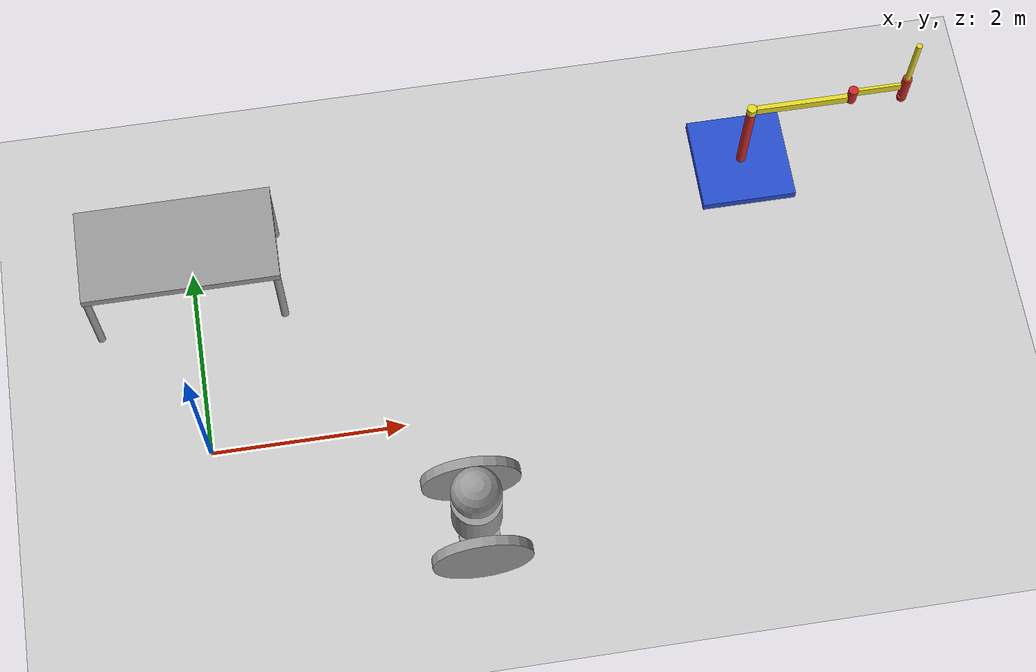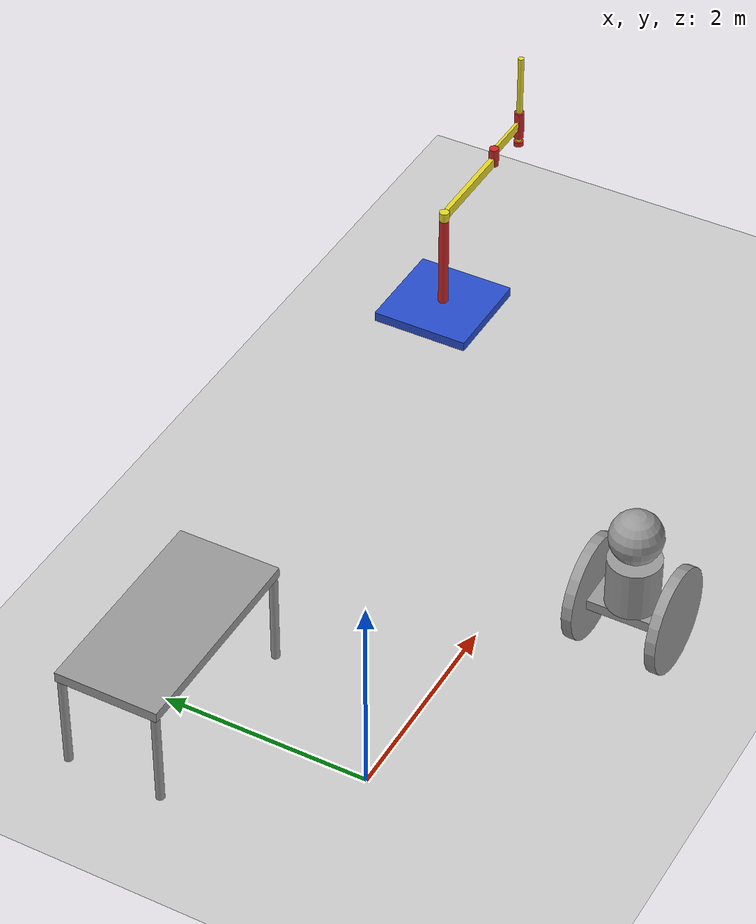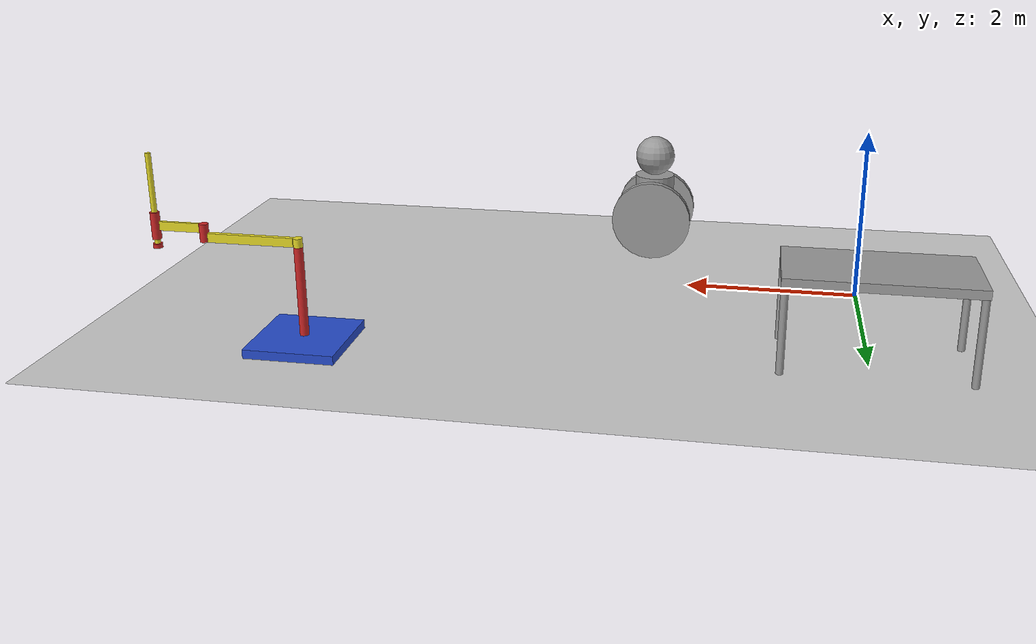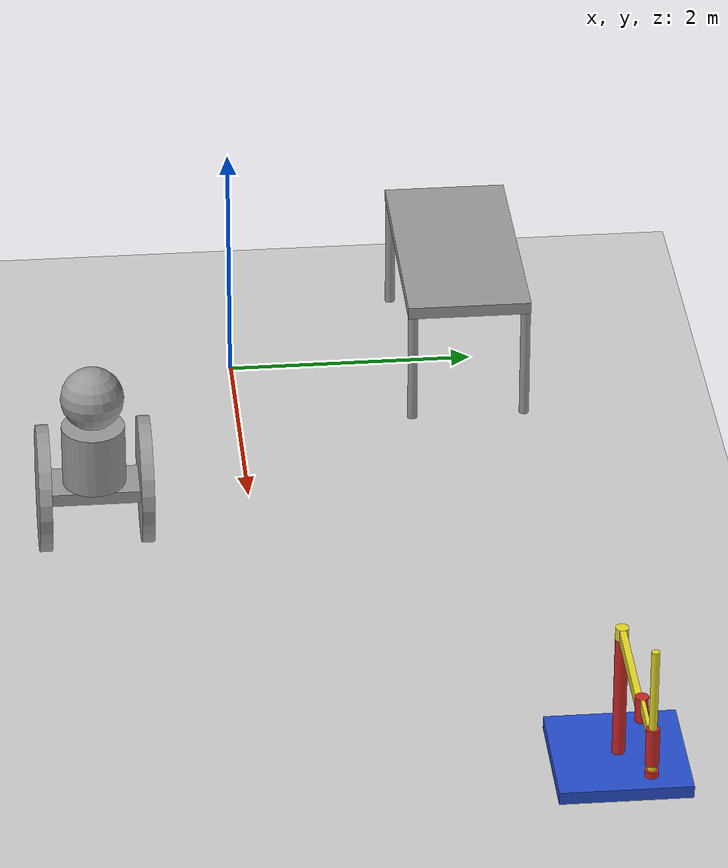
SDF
<sdf version="1.7">
 <world name="default">
  <model name="ground_plane">
   <static>1</static>
   <link name="link">
    <collision name="collision">
     <geometry><plane><normal>0 0 1</normal><size>100 100</size></plane></geometry>
     <surface>
      <contact><collide_bitmask>65535</collide_bitmask></contact>
      <friction><ode><mu>100</mu><mu2>50</mu2></ode></friction>
     </surface>
    </collision>
    <visual name="visual">
     <cast_shadows>0</cast_shadows>
     <geometry><plane><normal>0 0 1</normal><size>100 100</size></plane></geometry>
     <material>
      <script><uri>file://media/materials/scripts/gazebo.material</uri><name>Gazebo/Grey</name></script>
     </material>
    </visual>
   </link>
  </model>
  <model name="table">
   <link name="link_0">
    <inertial>
     <mass>1</mass>
     <inertia>
      <ixx>0.166667</ixx>
      <ixy>0</ixy>
      <ixz>0</ixz>
      <iyy>0.166667</iyy>
      <iyz>0</iyz>
      <izz>0.166667</izz>
     </inertia>
     <pose>0 0 1.5 0 -0 0</pose>
    </inertial>
    <pose>2e-06 0 0.4 0 -0 0</pose>
    <visual name="visual">
     <geometry><box><size>2 1 0.1</size></box></geometry>
     <material>
      <lighting>1</lighting>
      <script><uri>file://media/materials/scripts/gazebo.material</uri><name>Gazebo/Grey</name></script>
      <shader type="pixel"><normal_map>__default__</normal_map></shader>
      <ambient>0.3 0.3 0.3 1</ambient>
      <diffuse>0.7 0.7 0.7 1</diffuse>
      <specular>0.01 0.01 0.01 1</specular>
      <emissive>0 0 0 1</emissive>
     </material>
    </visual>
    <collision name="collision">
     <geometry><box><size>2 1 0.1</size></box></geometry>
     <surface>
      <friction>
       <ode><mu>1</mu><mu2>1</mu2><fdir1>0 0 0</fdir1><slip1>0</slip1><slip2>0</slip2></ode>
       <torsional>
        <coefficient>1</coefficient>
        <patch_radius>0</patch_radius>
        <surface_radius>0</surface_radius>
        <use_patch_radius>1</use_patch_radius>
        <ode><slip>0</slip></ode>
       </torsional>
      </friction>
      <bounce><restitution_coefficient>0</restitution_coefficient><threshold>1e+06</threshold></bounce>
      <contact>
       <collide_without_contact>0</collide_without_contact>
       <collide_without_contact_bitmask>1</collide_without_contact_bitmask>
       <collide_bitmask>1</collide_bitmask>
       <ode>
        <soft_cfm>0</soft_cfm>
        <soft_erp>0.2</soft_erp>
        <kp>1e+13</kp>
        <kd>1</kd>
        <max_vel>0.01</max_vel>
        <min_depth>0</min_depth>
       </ode>
       <bullet>
        <split_impulse>1</split_impulse>
        <split_impulse_penetration_threshold>-0.01</split_impulse_penetration_threshold>
        <soft_cfm>0</soft_cfm>
        <soft_erp>0.2</soft_erp>
        <kp>1e+13</kp>
        <kd>1</kd>
       </bullet>
      </contact>
     </surface>
    </collision>
   </link>
   <link name="link_1">
    <inertial>
     <mass>1</mass>
     <inertia><ixx>0.145833</ixx><ixy>0</ixy><ixz>0</ixz><iyy>0.145833</iyy><iyz>0</iyz><izz>0.125</izz></inertia>
    </inertial>
    <pose>-0.960002 -0.46 -0.1 0 -0 0</pose>
    <visual name="visual">
     <geometry><cylinder><radius>0.04</radius><length>1</length></cylinder></geometry>
     <material>
      <lighting>1</lighting>
      <script><uri>file://media/materials/scripts/gazebo.material</uri><name>Gazebo/Grey</name></script>
      <shader type="pixel"><normal_map>__default__</normal_map></shader>
      <ambient>0.3 0.3 0.3 1</ambient>
      <diffuse>0.7 0.7 0.7 1</diffuse>
      <specular>0.01 0.01 0.01 1</specular>
      <emissive>0 0 0 1</emissive>
     </material>
    </visual>
    <collision name="collision">
     <geometry><cylinder><radius>0.04</radius><length>1</length></cylinder></geometry>
     <surface>
      <friction>
       <ode><mu>1</mu><mu2>1</mu2><fdir1>0 0 0</fdir1><slip1>0</slip1><slip2>0</slip2></ode>
       <torsional>
        <coefficient>1</coefficient>
        <patch_radius>0</patch_radius>
        <surface_radius>0</surface_radius>
        <use_patch_radius>1</use_patch_radius>
        <ode><slip>0</slip></ode>
       </torsional>
      </friction>
      <bounce><restitution_coefficient>0</restitution_coefficient><threshold>1e+06</threshold></bounce>
      <contact>
       <collide_without_contact>0</collide_without_contact>
       <collide_without_contact_bitmask>1</collide_without_contact_bitmask>
       <collide_bitmask>1</collide_bitmask>
       <ode>
        <soft_cfm>0</soft_cfm>
        <soft_erp>0.2</soft_erp>
        <kp>1e+13</kp>
        <kd>1</kd>
        <max_vel>0.01</max_vel>
        <min_depth>0</min_depth>
       </ode>
       <bullet>
        <split_impulse>1</split_impulse>
        <split_impulse_penetration_threshold>-0.01</split_impulse_penetration_threshold>
        <soft_cfm>0</soft_cfm>
        <soft_erp>0.2</soft_erp>
        <kp>1e+13</kp>
        <kd>1</kd>
       </bullet>
      </contact>
     </surface>
    </collision>
   </link>
   <link name="link_1_clone">
    <inertial>
     <mass>1</mass>
     <inertia><ixx>0.145833</ixx><ixy>0</ixy><ixz>0</ixz><iyy>0.145833</iyy><iyz>0</iyz><izz>0.125</izz></inertia>
    </inertial>
    <pose>-0.960002 0.46 -0.1 0 -0 0</pose>
    <visual name="visual">
     <geometry><cylinder><radius>0.04</radius><length>1</length></cylinder></geometry>
     <material>
      <lighting>1</lighting>
      <script><uri>file://media/materials/scripts/gazebo.material</uri><name>Gazebo/Grey</name></script>
      <shader type="pixel"><normal_map>__default__</normal_map></shader>
      <ambient>0.3 0.3 0.3 1</ambient>
      <diffuse>0.7 0.7 0.7 1</diffuse>
      <specular>0.01 0.01 0.01 1</specular>
      <emissive>0 0 0 1</emissive>
     </material>
    </visual>
    <collision name="collision">
     <geometry><cylinder><radius>0.04</radius><length>1</length></cylinder></geometry>
     <surface>
      <friction>
       <ode><mu>1</mu><mu2>1</mu2><fdir1>0 0 0</fdir1><slip1>0</slip1><slip2>0</slip2></ode>
       <torsional>
        <coefficient>1</coefficient>
        <patch_radius>0</patch_radius>
        <surface_radius>0</surface_radius>
        <use_patch_radius>1</use_patch_radius>
        <ode><slip>0</slip></ode>
       </torsional>
      </friction>
      <bounce><restitution_coefficient>0</restitution_coefficient><threshold>1e+06</threshold></bounce>
      <contact>
       <collide_without_contact>0</collide_without_contact>
       <collide_without_contact_bitmask>1</collide_without_contact_bitmask>
       <collide_bitmask>1</collide_bitmask>
       <ode>
        <soft_cfm>0</soft_cfm>
        <soft_erp>0.2</soft_erp>
        <kp>1e+13</kp>
        <kd>1</kd>
        <max_vel>0.01</max_vel>
        <min_depth>0</min_depth>
       </ode>
       <bullet>
        <split_impulse>1</split_impulse>
        <split_impulse_penetration_threshold>-0.01</split_impulse_penetration_threshold>
        <soft_cfm>0</soft_cfm>
        <soft_erp>0.2</soft_erp>
        <kp>1e+13</kp>
        <kd>1</kd>
       </bullet>
      </contact>
     </surface>
    </collision>
   </link>
   <link name="link_1_clone_0">
    <inertial>
     <mass>1</mass>
     <inertia><ixx>0.145833</ixx><ixy>0</ixy><ixz>0</ixz><iyy>0.145833</iyy><iyz>0</iyz><izz>0.125</izz></inertia>
    </inertial>
    <pose>0.960002 -0.46 -0.1 0 -0 0</pose>
    <visual name="visual">
     <geometry><cylinder><radius>0.04</radius><length>1</length></cylinder></geometry>
     <material>
      <lighting>1</lighting>
      <script><uri>file://media/materials/scripts/gazebo.material</uri><name>Gazebo/Grey</name></script>
      <shader type="pixel"><normal_map>__default__</normal_map></shader>
      <ambient>0.3 0.3 0.3 1</ambient>
      <diffuse>0.7 0.7 0.7 1</diffuse>
      <specular>0.01 0.01 0.01 1</specular>
      <emissive>0 0 0 1</emissive>
     </material>
    </visual>
    <collision name="collision">
     <geometry><cylinder><radius>0.04</radius><length>1</length></cylinder></geometry>
     <surface>
      <friction>
       <ode><mu>1</mu><mu2>1</mu2><fdir1>0 0 0</fdir1><slip1>0</slip1><slip2>0</slip2></ode>
       <torsional>
        <coefficient>1</coefficient>
        <patch_radius>0</patch_radius>
        <surface_radius>0</surface_radius>
        <use_patch_radius>1</use_patch_radius>
        <ode><slip>0</slip></ode>
       </torsional>
      </friction>
      <bounce><restitution_coefficient>0</restitution_coefficient><threshold>1e+06</threshold></bounce>
      <contact>
       <collide_without_contact>0</collide_without_contact>
       <collide_without_contact_bitmask>1</collide_without_contact_bitmask>
       <collide_bitmask>1</collide_bitmask>
       <ode>
        <soft_cfm>0</soft_cfm>
        <soft_erp>0.2</soft_erp>
        <kp>1e+13</kp>
        <kd>1</kd>
        <max_vel>0.01</max_vel>
        <min_depth>0</min_depth>
       </ode>
       <bullet>
        <split_impulse>1</split_impulse>
        <split_impulse_penetration_threshold>-0.01</split_impulse_penetration_threshold>
        <soft_cfm>0</soft_cfm>
        <soft_erp>0.2</soft_erp>
        <kp>1e+13</kp>
        <kd>1</kd>
       </bullet>
      </contact>
     </surface>
    </collision>
   </link>
   <link name="link_1_clone_1">
    <inertial>
     <mass>1</mass>
     <inertia><ixx>0.145833</ixx><ixy>0</ixy><ixz>0</ixz><iyy>0.145833</iyy><iyz>0</iyz><izz>0.125</izz></inertia>
    </inertial>
    <pose>0.960002 0.46 -0.1 0 -0 0</pose>
    <visual name="visual">
     <geometry><cylinder><radius>0.04</radius><length>1</length></cylinder></geometry>
     <material>
      <lighting>1</lighting>
      <script><uri>file://media/materials/scripts/gazebo.material</uri><name>Gazebo/Grey</name></script>
      <shader type="pixel"><normal_map>__default__</normal_map></shader>
      <ambient>0.3 0.3 0.3 1</ambient>
      <diffuse>0.7 0.7 0.7 1</diffuse>
      <specular>0.01 0.01 0.01 1</specular>
      <emissive>0 0 0 1</emissive>
     </material>
    </visual>
    <collision name="collision">
     <geometry><cylinder><radius>0.04</radius><length>1</length></cylinder></geometry>
     <surface>
      <friction>
       <ode><mu>1</mu><mu2>1</mu2><fdir1>0 0 0</fdir1><slip1>0</slip1><slip2>0</slip2></ode>
       <torsional>
        <coefficient>1</coefficient>
        <patch_radius>0</patch_radius>
        <surface_radius>0</surface_radius>
        <use_patch_radius>1</use_patch_radius>
        <ode><slip>0</slip></ode>
       </torsional>
      </friction>
      <bounce><restitution_coefficient>0</restitution_coefficient><threshold>1e+06</threshold></bounce>
      <contact>
       <collide_without_contact>0</collide_without_contact>
       <collide_without_contact_bitmask>1</collide_without_contact_bitmask>
       <collide_bitmask>1</collide_bitmask>
       <ode>
        <soft_cfm>0</soft_cfm>
        <soft_erp>0.2</soft_erp>
        <kp>1e+13</kp>
        <kd>1</kd>
        <max_vel>0.01</max_vel>
        <min_depth>0</min_depth>
       </ode>
       <bullet>
        <split_impulse>1</split_impulse>
        <split_impulse_penetration_threshold>-0.01</split_impulse_penetration_threshold>
        <soft_cfm>0</soft_cfm>
        <soft_erp>0.2</soft_erp>
        <kp>1e+13</kp>
        <kd>1</kd>
       </bullet>
      </contact>
     </surface>
    </collision>
   </link>
   <joint name="link_0_JOINT_1" type="revolute">
    <parent>link_0</parent>
    <child>link_1_clone</child>
    <axis>
     <xyz>1 0 0</xyz>
     <limit>
      <lower>-1.79769e+308</lower>
      <upper>1.79769e+308</upper>
      <effort>-1</effort>
      <velocity>-1</velocity>
     </limit>
     <dynamics>
      <spring_reference>0</spring_reference>
      <spring_stiffness>0</spring_stiffness>
      <damping>0</damping>
     </dynamics>
    </axis>
    <physics>
     <ode><limit><cfm>0</cfm><erp>0.2</erp></limit><suspension><cfm>0</cfm><erp>0.2</erp></suspension></ode>
    </physics>
   </joint>
   <joint name="link_0_JOINT_2" type="revolute">
    <parent>link_0</parent>
    <child>link_1_clone_0</child>
    <axis>
     <xyz>1 0 0</xyz>
     <limit>
      <lower>-1.79769e+308</lower>
      <upper>1.79769e+308</upper>
      <effort>-1</effort>
      <velocity>-1</velocity>
     </limit>
     <dynamics>
      <spring_reference>0</spring_reference>
      <spring_stiffness>0</spring_stiffness>
      <damping>0</damping>
     </dynamics>
    </axis>
    <physics>
     <ode><limit><cfm>0</cfm><erp>0.2</erp></limit><suspension><cfm>0</cfm><erp>0.2</erp></suspension></ode>
    </physics>
   </joint>
   <joint name="link_0_JOINT_3" type="revolute">
    <parent>link_0</parent>
    <child>link_1_clone_1</child>
    <axis>
     <xyz>1 0 0</xyz>
     <limit>
      <lower>-1.79769e+308</lower>
      <upper>1.79769e+308</upper>
      <effort>-1</effort>
      <velocity>-1</velocity>
     </limit>
     <dynamics>
      <spring_reference>0</spring_reference>
      <spring_stiffness>0</spring_stiffness>
      <damping>0</damping>
     </dynamics>
    </axis>
    <physics>
     <ode><limit><cfm>0</cfm><erp>0.2</erp></limit><suspension><cfm>0</cfm><erp>0.2</erp></suspension></ode>
    </physics>
   </joint>
   <joint name="link_1_JOINT_0" type="revolute">
    <parent>link_0</parent>
    <child>link_1</child>
    <axis>
     <xyz>1 0 0</xyz>
     <limit>
      <lower>-1.79769e+308</lower>
      <upper>1.79769e+308</upper>
      <effort>-1</effort>
      <velocity>-1</velocity>
     </limit>
     <dynamics>
      <spring_reference>0</spring_reference>
      <spring_stiffness>0</spring_stiffness>
      <damping>0</damping>
     </dynamics>
    </axis>
    <physics>
     <ode><limit><cfm>0</cfm><erp>0.2</erp></limit><suspension><cfm>0</cfm><erp>0.2</erp></suspension></ode>
    </physics>
   </joint>
   <static>0</static>
   <pose>-0.046218 1.88898 0.600004 4e-06 5e-06 5e-06</pose>
  </model>
  <model name="model_clone">
   <link name="link_0">
    <inertial>
     <mass>1</mass>
     <inertia>
      <ixx>0.166667</ixx>
      <ixy>0</ixy>
      <ixz>0</ixz>
      <iyy>0.166667</iyy>
      <iyz>0</iyz>
      <izz>0.166667</izz>
     </inertia>
    </inertial>
    <pose>0 -0.4 1.5 0 -0 0</pose>
    <visual name="visual">
     <geometry><box><size>0.4 0.7 0.1</size></box></geometry>
     <material>
      <lighting>1</lighting>
      <script><uri>file://media/materials/scripts/gazebo.material</uri><name>Gazebo/Grey</name></script>
      <shader type="pixel"><normal_map>__default__</normal_map></shader>
      <ambient>0.3 0.3 0.3 1</ambient>
      <diffuse>0.7 0.7 0.7 1</diffuse>
      <specular>0.01 0.01 0.01 1</specular>
      <emissive>0 0 0 1</emissive>
     </material>
    </visual>
    <collision name="collision">
     <geometry><box><size>0.4 0.7 0.1</size></box></geometry>
     <surface>
      <friction>
       <ode><mu>1</mu><mu2>1</mu2><fdir1>0 0 0</fdir1><slip1>0</slip1><slip2>0</slip2></ode>
       <torsional>
        <coefficient>1</coefficient>
        <patch_radius>0</patch_radius>
        <surface_radius>0</surface_radius>
        <use_patch_radius>1</use_patch_radius>
        <ode><slip>0</slip></ode>
       </torsional>
      </friction>
      <bounce><restitution_coefficient>0</restitution_coefficient><threshold>1e+06</threshold></bounce>
      <contact>
       <collide_without_contact>0</collide_without_contact>
       <collide_without_contact_bitmask>1</collide_without_contact_bitmask>
       <collide_bitmask>1</collide_bitmask>
       <ode>
        <soft_cfm>0</soft_cfm>
        <soft_erp>0.2</soft_erp>
        <kp>1e+13</kp>
        <kd>1</kd>
        <max_vel>0.01</max_vel>
        <min_depth>0</min_depth>
       </ode>
       <bullet>
        <split_impulse>1</split_impulse>
        <split_impulse_penetration_threshold>-0.01</split_impulse_penetration_threshold>
        <soft_cfm>0</soft_cfm>
        <soft_erp>0.2</soft_erp>
        <kp>1e+13</kp>
        <kd>1</kd>
       </bullet>
      </contact>
     </surface>
    </collision>
   </link>
   <link name="link_1">
    <inertial>
     <mass>1</mass>
     <inertia><ixx>0.1</ixx><ixy>0</ixy><ixz>0</ixz><iyy>0.1</iyy><iyz>0</iyz><izz>0.1</izz></inertia>
    </inertial>
    <pose>0 -0.4 2.3 0 -0 0</pose>
    <visual name="visual">
     <geometry><sphere><radius>0.25</radius></sphere></geometry>
     <material>
      <lighting>1</lighting>
      <script><uri>file://media/materials/scripts/gazebo.material</uri><name>Gazebo/Grey</name></script>
      <shader type="pixel"><normal_map>__default__</normal_map></shader>
      <ambient>0.3 0.3 0.3 1</ambient>
      <diffuse>0.7 0.7 0.7 1</diffuse>
      <specular>0.01 0.01 0.01 1</specular>
      <emissive>0 0 0 1</emissive>
     </material>
    </visual>
    <collision name="collision">
     <geometry><sphere><radius>0.25</radius></sphere></geometry>
     <surface>
      <friction>
       <ode><mu>1</mu><mu2>1</mu2><fdir1>0 0 0</fdir1><slip1>0</slip1><slip2>0</slip2></ode>
       <torsional>
        <coefficient>1</coefficient>
        <patch_radius>0</patch_radius>
        <surface_radius>0</surface_radius>
        <use_patch_radius>1</use_patch_radius>
        <ode><slip>0</slip></ode>
       </torsional>
      </friction>
      <bounce><restitution_coefficient>0</restitution_coefficient><threshold>1e+06</threshold></bounce>
      <contact>
       <collide_without_contact>0</collide_without_contact>
       <collide_without_contact_bitmask>1</collide_without_contact_bitmask>
       <collide_bitmask>1</collide_bitmask>
       <ode>
        <soft_cfm>0</soft_cfm>
        <soft_erp>0.2</soft_erp>
        <kp>1e+13</kp>
        <kd>1</kd>
        <max_vel>0.01</max_vel>
        <min_depth>0</min_depth>
       </ode>
       <bullet>
        <split_impulse>1</split_impulse>
        <split_impulse_penetration_threshold>-0.01</split_impulse_penetration_threshold>
        <soft_cfm>0</soft_cfm>
        <soft_erp>0.2</soft_erp>
        <kp>1e+13</kp>
        <kd>1</kd>
       </bullet>
      </contact>
     </surface>
    </collision>
   </link>
   <link name="link_2">
    <inertial>
     <mass>1</mass>
     <inertia><ixx>0.145833</ixx><ixy>0</ixy><ixz>0</ixz><iyy>0.145833</iyy><iyz>0</iyz><izz>0.125</izz></inertia>
    </inertial>
    <pose>0 -0.4 1.8 0 -0 0</pose>
    <visual name="visual">
     <geometry><cylinder><radius>0.25</radius><length>0.5</length></cylinder></geometry>
     <material>
      <lighting>1</lighting>
      <script><uri>file://media/materials/scripts/gazebo.material</uri><name>Gazebo/Grey</name></script>
      <shader type="pixel"><normal_map>__default__</normal_map></shader>
      <ambient>0.3 0.3 0.3 1</ambient>
      <diffuse>0.7 0.7 0.7 1</diffuse>
      <specular>0.01 0.01 0.01 1</specular>
      <emissive>0 0 0 1</emissive>
     </material>
    </visual>
    <collision name="collision">
     <geometry><cylinder><radius>0.25</radius><length>0.5</length></cylinder></geometry>
     <surface>
      <friction>
       <ode><mu>1</mu><mu2>1</mu2><fdir1>0 0 0</fdir1><slip1>0</slip1><slip2>0</slip2></ode>
       <torsional>
        <coefficient>1</coefficient>
        <patch_radius>0</patch_radius>
        <surface_radius>0</surface_radius>
        <use_patch_radius>1</use_patch_radius>
        <ode><slip>0</slip></ode>
       </torsional>
      </friction>
      <bounce><restitution_coefficient>0</restitution_coefficient><threshold>1e+06</threshold></bounce>
      <contact>
       <collide_without_contact>0</collide_without_contact>
       <collide_without_contact_bitmask>1</collide_without_contact_bitmask>
       <collide_bitmask>1</collide_bitmask>
       <ode>
        <soft_cfm>0</soft_cfm>
        <soft_erp>0.2</soft_erp>
        <kp>1e+13</kp>
        <kd>1</kd>
        <max_vel>0.01</max_vel>
        <min_depth>0</min_depth>
       </ode>
       <bullet>
        <split_impulse>1</split_impulse>
        <split_impulse_penetration_threshold>-0.01</split_impulse_penetration_threshold>
        <soft_cfm>0</soft_cfm>
        <soft_erp>0.2</soft_erp>
        <kp>1e+13</kp>
        <kd>1</kd>
       </bullet>
      </contact>
     </surface>
    </collision>
   </link>
   <link name="link_3">
    <inertial>
     <mass>1</mass>
     <inertia><ixx>0.145833</ixx><ixy>0</ixy><ixz>0</ixz><iyy>0.145833</iyy><iyz>0</iyz><izz>0.125</izz></inertia>
    </inertial>
    <pose>0 0 1.54252 0 -0 0</pose>
    <visual name="visual">
     <pose>0 0 0 1.5708 -0 0</pose>
     <geometry><cylinder><radius>0.5</radius><length>0.1</length></cylinder></geometry>
     <material>
      <lighting>1</lighting>
      <script><uri>file://media/materials/scripts/gazebo.material</uri><name>Gazebo/Grey</name></script>
      <shader type="pixel"><normal_map>__default__</normal_map></shader>
      <ambient>0.3 0.3 0.3 1</ambient>
      <diffuse>0.7 0.7 0.7 1</diffuse>
      <specular>0.01 0.01 0.01 1</specular>
      <emissive>0 0 0 1</emissive>
     </material>
    </visual>
    <collision name="collision">
     <pose>0 0 0 1.5708 -0 0</pose>
     <geometry><cylinder><radius>0.5</radius><length>0.1</length></cylinder></geometry>
     <surface>
      <friction>
       <ode><mu>1</mu><mu2>1</mu2><fdir1>0 0 0</fdir1><slip1>0</slip1><slip2>0</slip2></ode>
       <torsional>
        <coefficient>1</coefficient>
        <patch_radius>0</patch_radius>
        <surface_radius>0</surface_radius>
        <use_patch_radius>1</use_patch_radius>
        <ode><slip>0</slip></ode>
       </torsional>
      </friction>
      <bounce><restitution_coefficient>0</restitution_coefficient><threshold>1e+06</threshold></bounce>
      <contact>
       <collide_without_contact>0</collide_without_contact>
       <collide_without_contact_bitmask>1</collide_without_contact_bitmask>
       <collide_bitmask>1</collide_bitmask>
       <ode>
        <soft_cfm>0</soft_cfm>
        <soft_erp>0.2</soft_erp>
        <kp>1e+13</kp>
        <kd>1</kd>
        <max_vel>0.01</max_vel>
        <min_depth>0</min_depth>
       </ode>
       <bullet>
        <split_impulse>1</split_impulse>
        <split_impulse_penetration_threshold>-0.01</split_impulse_penetration_threshold>
        <soft_cfm>0</soft_cfm>
        <soft_erp>0.2</soft_erp>
        <kp>1e+13</kp>
        <kd>1</kd>
       </bullet>
      </contact>
     </surface>
    </collision>
   </link>
   <link name="link_3_clone">
    <inertial>
     <mass>1</mass>
     <inertia><ixx>0.145833</ixx><ixy>0</ixy><ixz>0</ixz><iyy>0.145833</iyy><iyz>0</iyz><izz>0.125</izz></inertia>
    </inertial>
    <pose>0 -0.8 1.5 -0.01 -0 0.003107</pose>
    <visual name="visual">
     <pose>0 0 0 1.5708 -0 0</pose>
     <geometry><cylinder><radius>0.5</radius><length>0.1</length></cylinder></geometry>
     <material>
      <lighting>1</lighting>
      <script><uri>file://media/materials/scripts/gazebo.material</uri><name>Gazebo/Grey</name></script>
      <shader type="pixel"><normal_map>__default__</normal_map></shader>
      <ambient>0.3 0.3 0.3 1</ambient>
      <diffuse>0.7 0.7 0.7 1</diffuse>
      <specular>0.01 0.01 0.01 1</specular>
      <emissive>0 0 0 1</emissive>
     </material>
    </visual>
    <collision name="collision">
     <pose>0 0 0 1.5708 -0 0</pose>
     <geometry><cylinder><radius>0.5</radius><length>0.1</length></cylinder></geometry>
     <surface>
      <friction>
       <ode><mu>1</mu><mu2>1</mu2><fdir1>0 0 0</fdir1><slip1>0</slip1><slip2>0</slip2></ode>
       <torsional>
        <coefficient>1</coefficient>
        <patch_radius>0</patch_radius>
        <surface_radius>0</surface_radius>
        <use_patch_radius>1</use_patch_radius>
        <ode><slip>0</slip></ode>
       </torsional>
      </friction>
      <bounce><restitution_coefficient>0</restitution_coefficient><threshold>1e+06</threshold></bounce>
      <contact>
       <collide_without_contact>0</collide_without_contact>
       <collide_without_contact_bitmask>1</collide_without_contact_bitmask>
       <collide_bitmask>1</collide_bitmask>
       <ode>
        <soft_cfm>0</soft_cfm>
        <soft_erp>0.2</soft_erp>
        <kp>1e+13</kp>
        <kd>1</kd>
        <max_vel>0.01</max_vel>
        <min_depth>0</min_depth>
       </ode>
       <bullet>
        <split_impulse>1</split_impulse>
        <split_impulse_penetration_threshold>-0.01</split_impulse_penetration_threshold>
        <soft_cfm>0</soft_cfm>
        <soft_erp>0.2</soft_erp>
        <kp>1e+13</kp>
        <kd>1</kd>
       </bullet>
      </contact>
     </surface>
    </collision>
   </link>
   <joint name="link_0_JOINT_0" type="universal">
    <parent>link_0</parent>
    <child>link_3</child>
    <axis>
     <xyz>1 0 0</xyz>
     <limit>
      <lower>-1.79769e+308</lower>
      <upper>1.79769e+308</upper>
      <effort>-1</effort>
      <velocity>-1</velocity>
     </limit>
     <dynamics>
      <spring_reference>0</spring_reference>
      <spring_stiffness>0</spring_stiffness>
      <damping>0</damping>
      <friction>0</friction>
     </dynamics>
    </axis>
    <axis2>
     <xyz>0 0 1</xyz>
     <limit><lower>-1e+16</lower><upper>1e+16</upper><effort>-1</effort><velocity>-1</velocity></limit>
     <dynamics>
      <spring_reference>0</spring_reference>
      <spring_stiffness>0</spring_stiffness>
      <damping>0</damping>
      <friction>0</friction>
     </dynamics>
    </axis2>
    <physics>
     <ode><limit><cfm>0</cfm><erp>0.2</erp></limit><suspension><cfm>0</cfm><erp>0.2</erp></suspension></ode>
    </physics>
   </joint>
   <joint name="link_0_JOINT_1" type="universal">
    <parent>link_0</parent>
    <child>link_3_clone</child>
    <axis>
     <xyz>0.999995 -0.003107 -3.1e-05</xyz>
     <limit>
      <lower>-1.79769e+308</lower>
      <upper>1.79769e+308</upper>
      <effort>-1</effort>
      <velocity>-1</velocity>
     </limit>
     <dynamics>
      <spring_reference>0</spring_reference>
      <spring_stiffness>0</spring_stiffness>
      <damping>0</damping>
      <friction>0</friction>
     </dynamics>
    </axis>
    <axis2>
     <xyz>0 0 1</xyz>
     <limit><lower>-1e+16</lower><upper>1e+16</upper><effort>-1</effort><velocity>-1</velocity></limit>
     <dynamics>
      <spring_reference>0</spring_reference>
      <spring_stiffness>0</spring_stiffness>
      <damping>0</damping>
      <friction>0</friction>
     </dynamics>
    </axis2>
    <physics>
     <ode><limit><cfm>0</cfm><erp>0.2</erp></limit><suspension><cfm>0</cfm><erp>0.2</erp></suspension></ode>
    </physics>
   </joint>
   <joint name="link_0_JOINT_2" type="universal">
    <parent>link_0</parent>
    <child>link_2</child>
    <axis>
     <xyz>1 0 0</xyz>
     <limit>
      <lower>-1.79769e+308</lower>
      <upper>1.79769e+308</upper>
      <effort>-1</effort>
      <velocity>-1</velocity>
     </limit>
     <dynamics>
      <spring_reference>0</spring_reference>
      <spring_stiffness>0</spring_stiffness>
      <damping>0</damping>
      <friction>0</friction>
     </dynamics>
    </axis>
    <axis2>
     <xyz>0 0 1</xyz>
     <limit><lower>-1e+16</lower><upper>1e+16</upper><effort>-1</effort><velocity>-1</velocity></limit>
     <dynamics>
      <spring_reference>0</spring_reference>
      <spring_stiffness>0</spring_stiffness>
      <damping>0</damping>
      <friction>0</friction>
     </dynamics>
    </axis2>
    <physics>
     <ode><limit><cfm>0</cfm><erp>0.2</erp></limit><suspension><cfm>0</cfm><erp>0.2</erp></suspension></ode>
    </physics>
   </joint>
   <joint name="link_2_JOINT_4" type="universal">
    <parent>link_2</parent>
    <child>link_1</child>
    <axis>
     <xyz>1 0 0</xyz>
     <limit>
      <lower>-1.79769e+308</lower>
      <upper>1.79769e+308</upper>
      <effort>-1</effort>
      <velocity>-1</velocity>
     </limit>
     <dynamics>
      <spring_reference>0</spring_reference>
      <spring_stiffness>0</spring_stiffness>
      <damping>0</damping>
      <friction>0</friction>
     </dynamics>
    </axis>
    <axis2>
     <xyz>0 0 1</xyz>
     <limit><lower>-1e+16</lower><upper>1e+16</upper><effort>-1</effort><velocity>-1</velocity></limit>
     <dynamics>
      <spring_reference>0</spring_reference>
      <spring_stiffness>0</spring_stiffness>
      <damping>0</damping>
      <friction>0</friction>
     </dynamics>
    </axis2>
    <physics>
     <ode><limit><cfm>0</cfm><erp>0.2</erp></limit><suspension><cfm>0</cfm><erp>0.2</erp></suspension></ode>
    </physics>
   </joint>
   <static>1</static>
   <pose>2.54653 -0.846371 -1 0 -0 0</pose>
  </model>
  <model name="simple_arm">
   <link name="arm_base">
    <inertial>
     <pose>0 0 0.00099 0 -0 0</pose>
     <inertia><ixx>1.11</ixx><ixy>0</ixy><ixz>0</ixz><iyy>100.11</iyy><iyz>0</iyz><izz>1.01</izz></inertia>
     <mass>101</mass>
    </inertial>
    <collision name="arm_base_geom">
     <pose>0 0 0.05 0 -0 0</pose>
     <geometry><box><size>1 1 0.1</size></box></geometry>
    </collision>
    <visual name="arm_base_geom_visual">
     <pose>0 0 0.05 0 -0 0</pose>
     <geometry><box><size>1 1 0.1</size></box></geometry>
     <material>
      <script><uri>file://media/materials/scripts/gazebo.material</uri><name>Gazebo/Blue</name></script>
     </material>
    </visual>
    <collision name="arm_base_geom_arm_trunk">
     <pose>0 0 0.6 0 -0 0</pose>
     <geometry><cylinder><radius>0.05</radius><length>1</length></cylinder></geometry>
    </collision>
    <visual name="arm_base_geom_arm_trunk_visual">
     <pose>0 0 0.6 0 -0 0</pose>
     <geometry><cylinder><radius>0.05</radius><length>1</length></cylinder></geometry>
     <material>
      <script><uri>file://media/materials/scripts/gazebo.material</uri><name>Gazebo/Red</name></script>
     </material>
    </visual>
   </link>
   <link name="arm_shoulder_pan">
    <pose>0 0 1.1 0 -0 0</pose>
    <inertial>
     <pose>0.045455 0 0 0 -0 0</pose>
     <inertia><ixx>0.011</ixx><ixy>0</ixy><ixz>0</ixz><iyy>0.0225</iyy><iyz>0</iyz><izz>0.0135</izz></inertia>
     <mass>1.1</mass>
    </inertial>
    <collision name="arm_shoulder_pan_geom">
     <pose>0 0 0.05 0 -0 0</pose>
     <geometry><cylinder><radius>0.05</radius><length>0.1</length></cylinder></geometry>
    </collision>
    <visual name="arm_shoulder_pan_geom_visual">
     <pose>0 0 0.05 0 -0 0</pose>
     <geometry><cylinder><radius>0.05</radius><length>0.1</length></cylinder></geometry>
     <material>
      <script><uri>file://media/materials/scripts/gazebo.material</uri><name>Gazebo/Yellow</name></script>
     </material>
    </visual>
    <collision name="arm_shoulder_pan_geom_arm_shoulder">
     <pose>0.55 0 0.05 0 -0 0</pose>
     <geometry><box><size>1 0.05 0.1</size></box></geometry>
    </collision>
    <visual name="arm_shoulder_pan_geom_arm_shoulder_visual">
     <pose>0.55 0 0.05 0 -0 0</pose>
     <geometry><box><size>1 0.05 0.1</size></box></geometry>
     <material>
      <script><uri>file://media/materials/scripts/gazebo.material</uri><name>Gazebo/Yellow</name></script>
     </material>
    </visual>
   </link>
   <link name="arm_elbow_pan">
    <pose>1.05 0 1.1 0 -0 0</pose>
    <inertial>
     <pose>0.0875 0 0.083333 0 -0 0</pose>
     <inertia>
      <ixx>0.031</ixx>
      <ixy>0</ixy>
      <ixz>0.005</ixz>
      <iyy>0.07275</iyy>
      <iyz>0</iyz>
      <izz>0.04475</izz>
     </inertia>
     <mass>1.2</mass>
    </inertial>
    <collision name="arm_elbow_pan_geom">
     <pose>0 0 0.1 0 -0 0</pose>
     <geometry><cylinder><radius>0.05</radius><length>0.2</length></cylinder></geometry>
    </collision>
    <visual name="arm_elbow_pan_geom_visual">
     <pose>0 0 0.1 0 -0 0</pose>
     <geometry><cylinder><radius>0.05</radius><length>0.2</length></cylinder></geometry>
     <material>
      <script><uri>file://media/materials/scripts/gazebo.material</uri><name>Gazebo/Red</name></script>
     </material>
    </visual>
    <collision name="arm_elbow_pan_geom_arm_elbow">
     <pose>0.3 0 0.15 0 -0 0</pose>
     <geometry><box><size>0.5 0.03 0.1</size></box></geometry>
    </collision>
    <visual name="arm_elbow_pan_geom_arm_elbow_visual">
     <pose>0.3 0 0.15 0 -0 0</pose>
     <geometry><box><size>0.5 0.03 0.1</size></box></geometry>
     <material>
      <script><uri>file://media/materials/scripts/gazebo.material</uri><name>Gazebo/Yellow</name></script>
     </material>
    </visual>
    <collision name="arm_elbow_pan_geom_arm_wrist">
     <pose>0.55 0 0.15 0 -0 0</pose>
     <geometry><cylinder><radius>0.05</radius><length>0.3</length></cylinder></geometry>
    </collision>
    <visual name="arm_elbow_pan_geom_arm_wrist_visual">
     <pose>0.55 0 0.15 0 -0 0</pose>
     <geometry><cylinder><radius>0.05</radius><length>0.3</length></cylinder></geometry>
     <material>
      <script><uri>file://media/materials/scripts/gazebo.material</uri><name>Gazebo/Red</name></script>
     </material>
    </visual>
   </link>
   <link name="arm_wrist_lift">
    <pose>1.6 0 1.05 0 -0 0</pose>
    <inertial>
     <inertia><ixx>0.01</ixx><ixy>0</ixy><ixz>0</ixz><iyy>0.01</iyy><iyz>0</iyz><izz>0.001</izz></inertia>
     <mass>0.1</mass>
    </inertial>
    <collision name="arm_wrist_lift_geom">
     <pose>0 0 0.5 0 -0 0</pose>
     <geometry><cylinder><radius>0.03</radius><length>1</length></cylinder></geometry>
    </collision>
    <visual name="arm_wrist_lift_geom_visual">
     <pose>0 0 0.5 0 -0 0</pose>
     <geometry><cylinder><radius>0.03</radius><length>1</length></cylinder></geometry>
     <material>
      <script><uri>file://media/materials/scripts/gazebo.material</uri><name>Gazebo/Yellow</name></script>
     </material>
    </visual>
   </link>
   <link name="arm_wrist_roll">
    <pose>1.6 0 1 0 -0 0</pose>
    <inertial>
     <inertia><ixx>0.01</ixx><ixy>0</ixy><ixz>0</ixz><iyy>0.01</iyy><iyz>0</iyz><izz>0.001</izz></inertia>
     <mass>0.1</mass>
    </inertial>
    <collision name="arm_wrist_roll_geom">
     <pose>0 0 0.025 0 -0 0</pose>
     <geometry><cylinder><radius>0.05</radius><length>0.05</length></cylinder></geometry>
    </collision>
    <visual name="arm_wrist_roll_geom_visual">
     <pose>0 0 0.025 0 -0 0</pose>
     <geometry><cylinder><radius>0.05</radius><length>0.05</length></cylinder></geometry>
     <material>
      <script><uri>file://media/materials/scripts/gazebo.material</uri><name>Gazebo/Red</name></script>
     </material>
    </visual>
   </link>
   <joint name="arm_shoulder_pan_joint" type="revolute">
    <parent>arm_base</parent>
    <child>arm_shoulder_pan</child>
    <axis>
     <dynamics>
      <damping>1</damping>
      <friction>0</friction>
      <spring_reference>0</spring_reference>
      <spring_stiffness>0</spring_stiffness>
     </dynamics>
     <xyz expressed_in="__model__">0 0 1</xyz>
     <limit><lower>-1e+16</lower><upper>1e+16</upper></limit>
    </axis>
   </joint>
   <joint name="arm_elbow_pan_joint" type="revolute">
    <parent>arm_shoulder_pan</parent>
    <child>arm_elbow_pan</child>
    <axis>
     <dynamics>
      <damping>1</damping>
      <friction>0</friction>
      <spring_reference>0</spring_reference>
      <spring_stiffness>0</spring_stiffness>
     </dynamics>
     <xyz expressed_in="__model__">0 0 1</xyz>
     <limit><lower>-1e+16</lower><upper>1e+16</upper></limit>
    </axis>
   </joint>
   <joint name="arm_wrist_lift_joint" type="prismatic">
    <parent>arm_elbow_pan</parent>
    <child>arm_wrist_lift</child>
    <axis>
     <dynamics>
      <damping>1</damping>
      <friction>0</friction>
      <spring_reference>0</spring_reference>
      <spring_stiffness>0</spring_stiffness>
     </dynamics>
     <limit><lower>-0.8</lower><upper>0.1</upper></limit>
     <xyz expressed_in="__model__">0 0 1</xyz>
    </axis>
   </joint>
   <joint name="arm_wrist_roll_joint" type="revolute">
    <parent>arm_wrist_lift</parent>
    <child>arm_wrist_roll</child>
    <axis>
     <dynamics>
      <damping>1</damping>
      <friction>0</friction>
      <spring_reference>0</spring_reference>
      <spring_stiffness>0</spring_stiffness>
     </dynamics>
     <limit><lower>-2.99999</lower><upper>2.99999</upper></limit>
     <xyz expressed_in="__model__">0 0 1</xyz>
    </axis>
   </joint>
   <pose>5.96905 2.45372 -0 0 0 -0.000506</pose>
  </model>
 </world>
</sdf>
